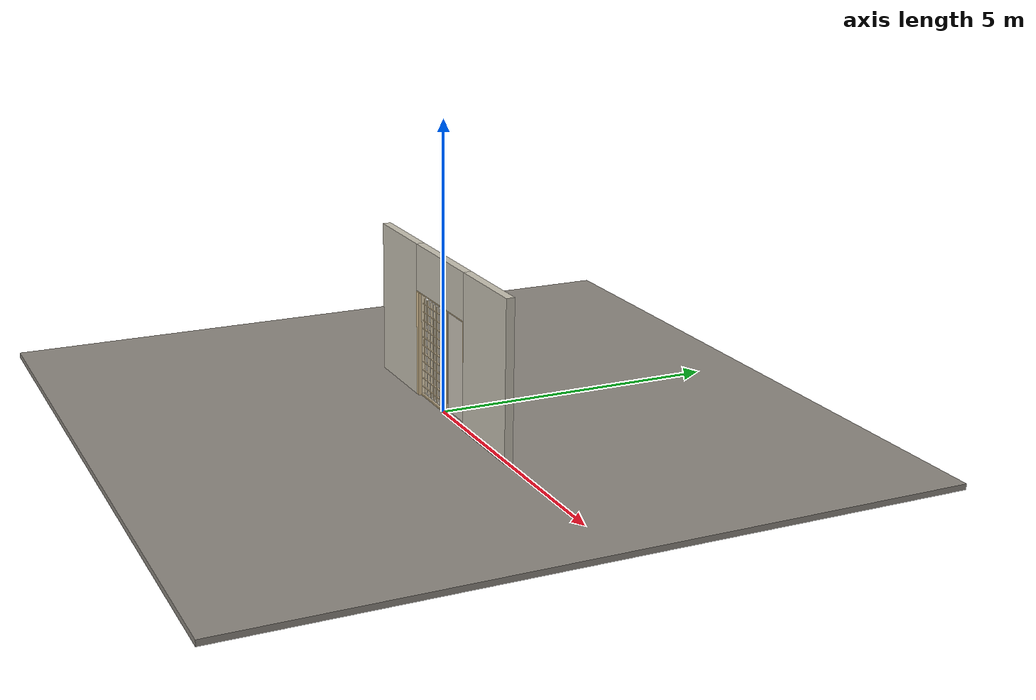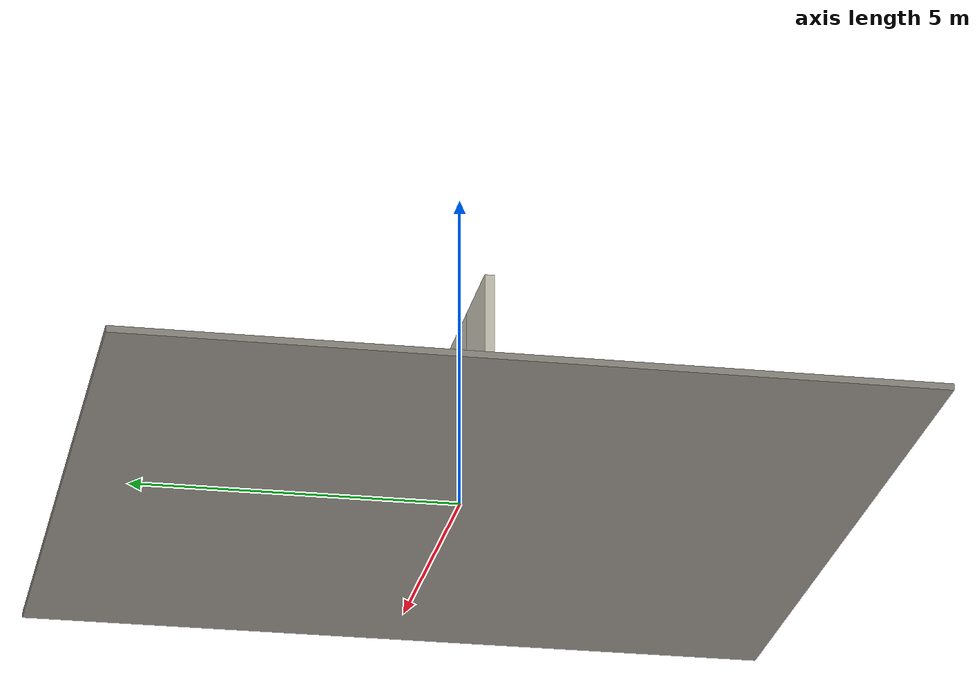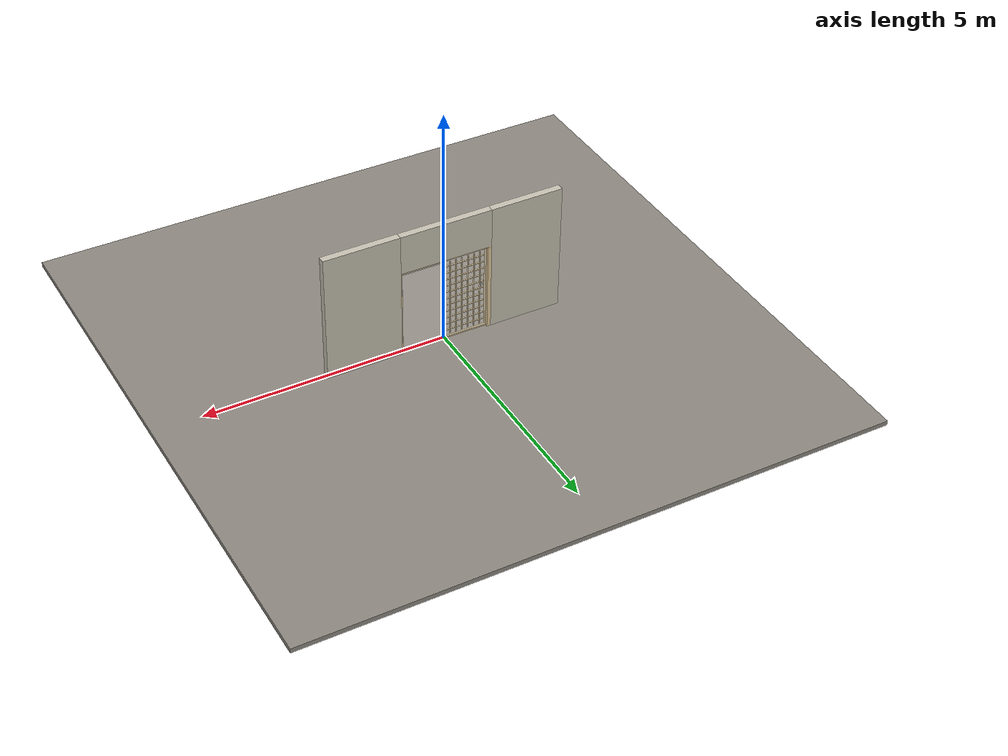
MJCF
<?xml version="1.0" ?>
<mujoco model="db0340_sliding_single_full">
  <compiler angle="radian" meshdir="../../hardware" texturedir="../../textures" autolimits="true" inertiafromgeom="false"/>
  <option timestep="0.002" integrator="implicitfast" cone="elliptic" impratio="10" noslip_iterations="3">
    <flag multiccd="enable"/>
  </option>
  <size memory="16M"/>
  <default>
    <geom condim="4" solref="0.005 1" solimp="0.95 0.99 0.001"/>
    <joint solreflimit="0.005 1" solimplimit="0.95 0.99 0.001"/>
    <tendon solreflimit="0.005 1"/>
    <equality solref="0.002 1"/>
  </default>
  <visual>
    <headlight ambient="0.4 0.4 0.4" diffuse="0.7 0.7 0.7" specular="0.2 0.2 0.2"/>
    <quality shadowsize="4096"/>
    <map znear="0.01" zfar="60"/>
  </visual>
  <asset>
    <material name="mat_floor" rgba="0.55 0.53 0.5 1" specular="0.2" shininess="0.15" reflectance="0"/>
    <material name="mat_wall" rgba="0.78 0.76 0.7 1" specular="0.2" shininess="0.1" reflectance="0"/>
    <material name="mat_frame" rgba="0.88 0.78 0.6 1" specular="0.2" shininess="0.4" reflectance="0"/>
    <material name="mat_track" rgba="0.8 0.81 0.83 1" specular="0.8" shininess="0.6" reflectance="0.4"/>
    <material name="mat_fixed_glass" rgba="0.85 0.92 0.95 0.25" specular="0.2" shininess="0.95" reflectance="0.1"/>
    <material name="mat_fixed_shoji" rgba="0.98 0.96 0.9 0.45" specular="0.2" shininess="0.1" reflectance="0.1"/>
    <material name="mat_shikii" rgba="0.88 0.78 0.6 1" specular="0.2" shininess="0.4" reflectance="0"/>
    <material name="mat_leaf" rgba="0.98 0.96 0.9 0.45" specular="0.2" shininess="0.1" reflectance="0.1"/>
    <material name="mat_kumiko" rgba="0.88 0.78 0.6 1" specular="0.2" shininess="0.4" reflectance="0"/>
    <material name="mat_roller" rgba="0.65 0.66 0.68 1" specular="0.74" shininess="0.5" reflectance="0.36"/>
    <material name="mat_op_hinoki" rgba="0.88 0.78 0.6 1" specular="0.2" shininess="0.4" reflectance="0"/>
    <material name="mat_op_nickel_satin" rgba="0.72 0.7 0.66 1" specular="0.8" shininess="0.65" reflectance="0.4"/>
    <material name="mat_hook" rgba="0.75 0.76 0.77 1" specular="0.8" shininess="0.65" reflectance="0.4"/>
    <texture name="skybox" type="skybox" builtin="gradient" rgb1="0.6 0.7 0.85" rgb2="0.9 0.92 0.95" width="256" height="256"/>
  </asset>
  <worldbody>
    <light name="sun" pos="1.5 -2.5 4" dir="-0.3 0.5 -0.8" directional="true" diffuse="0.8 0.8 0.8" specular="0.3 0.3 0.3" castshadow="true"/>
    <light name="fill" pos="-1.5 2.5 3" dir="0.3 -0.5 -0.7" directional="true" diffuse="0.35 0.35 0.4" castshadow="false"/>
    <camera name="robot_view" pos="0 -2.36875 1.59325" xyaxes="1 0 0 0 0.26963 0.962964" fovy="52"/>
    <camera name="far_view" pos="0 2.36875 1.59325" xyaxes="-1 0 0 0 -0.26963 0.962964" fovy="52"/>
    <camera name="iso" pos="1.80025 -1.98975 1.97225" xyaxes="0.741536 0.670913 0 -0.242917 0.268487 0.932151" fovy="46"/>
    <camera name="detail_handle" pos="-0.635 -0.815 1.28" xyaxes="0.97561 0.219512 0 -0.070934 0.315262 0.94635" fovy="38"/>
    <geom name="floor" type="box" size="6 6 0.05" pos="0 0 -0.05" material="mat_floor" group="0" contype="1" conaffinity="1" friction="0.8 0.005 0.0001" density="2400"/>
    <geom name="wall_left" type="box" size="0.7555 0.0725 1.35" pos="-1.7445 0 1.35" material="mat_wall" group="0" contype="1" conaffinity="1" friction="0.6 0.005 0.0001" density="800"/>
    <geom name="wall_right" type="box" size="0.7855 0.0725 1.35" pos="1.7145 0 1.35" material="mat_wall" group="0" contype="1" conaffinity="1" friction="0.6 0.005 0.0001" density="800"/>
    <geom name="wall_header" type="box" size="0.959 0.0725 0.4105" pos="-0.03 0 2.2895" material="mat_wall" group="0" contype="1" conaffinity="1" friction="0.6 0.005 0.0001" density="800"/>
    <geom name="jamb_r" type="box" size="0.0095 0.0725 0.93" pos="0.9195 0 0.93" material="mat_frame" group="0" contype="1" conaffinity="1" friction="0.6 0.005 0.0001" density="300"/>
    <geom name="jamb_head" type="box" size="0.929 0.0725 0.0095" pos="0 0 1.8695" material="mat_frame" group="0" contype="1" conaffinity="1" friction="0.6 0.005 0.0001" density="300"/>
    <geom name="fixed_panel_glass" type="box" size="0.435 0.003 0.88" pos="0.455 0.04 0.93" material="mat_fixed_shoji" group="0" contype="1" conaffinity="1" friction="0.6 0.005 0.0001" density="2500"/>
    <geom name="fixed_panel_stile" type="box" size="0.03 0.012 0.93" pos="0.03 0.04 0.93" material="mat_frame" group="0" contype="1" conaffinity="1" friction="0.6 0.005 0.0001" density="1400"/>
    <geom name="shikii" type="box" size="0.95 0.025 0.012" pos="-0.005 0 0.012" material="mat_shikii" group="0" contype="1" conaffinity="1" friction="0.6 0.005 0.0001" density="2700"/>
    <geom name="kamoi" type="box" size="0.95 0.025 0.03" pos="-0.005 0 1.89" material="mat_shikii" group="0" contype="1" conaffinity="1" friction="0.6 0.005 0.0001" density="410"/>
    <geom name="jamb_latch_0" type="box" size="0.0395 0.0725 0.93" pos="-0.9495 0 0.93" material="mat_frame" group="0" contype="1" conaffinity="1" friction="0.6 0.005 0.0001" density="300"/>
    <site name="approach_point" pos="0 -1.5 0" quat="1 0 0 0" size="0.05" rgba="0.2 0.9 0.2 0.5" group="4"/>
    <site name="goal_point" pos="0 1.5 0" quat="1 0 0 0" size="0.05" rgba="0.2 0.9 0.2 0.5" group="4"/>
    <site name="door_plane_center" pos="0 0 0.93" quat="1 0 0 0" size="0.02" rgba="0.2 0.9 0.2 0.5" group="4"/>
    <body name="leaf" pos="-0.455 0 0">
      <inertial pos="-0.000342 0.000005 0.927069" mass="8.01336" quat="0.500024 0.500037 0.499962 -0.499976" diaginertia="0.54185127 2.161905695 2.702552101"/>
      <joint name="leaf_slide" type="slide" axis="1 0 0" limited="true" range="0 0.9" damping="2.400668" frictionloss="3.929211" armature="0.5"/>
      <geom name="leaf_slab" type="box" size="0.45 0.015 0.9" pos="0 0 0.927" material="mat_leaf" group="0" contype="1" conaffinity="1" friction="0.3 0.005 0.0001" density="1"/>
      <geom name="leaf_kumiko_v1" type="box" size="0.006 0.017 0.85" pos="-0.321429 0 0.927" material="mat_kumiko" group="1" contype="0" conaffinity="0" density="1"/>
      <geom name="leaf_kumiko_v2" type="box" size="0.006 0.017 0.85" pos="-0.192857 0 0.927" material="mat_kumiko" group="1" contype="0" conaffinity="0" density="1"/>
      <geom name="leaf_kumiko_v3" type="box" size="0.006 0.017 0.85" pos="-0.064286 0 0.927" material="mat_kumiko" group="1" contype="0" conaffinity="0" density="1"/>
      <geom name="leaf_kumiko_v4" type="box" size="0.006 0.017 0.85" pos="0.064286 0 0.927" material="mat_kumiko" group="1" contype="0" conaffinity="0" density="1"/>
      <geom name="leaf_kumiko_v5" type="box" size="0.006 0.017 0.85" pos="0.192857 0 0.927" material="mat_kumiko" group="1" contype="0" conaffinity="0" density="1"/>
      <geom name="leaf_kumiko_v6" type="box" size="0.006 0.017 0.85" pos="0.321429 0 0.927" material="mat_kumiko" group="1" contype="0" conaffinity="0" density="1"/>
      <geom name="leaf_kumiko_h1" type="box" size="0.41 0.017 0.006" pos="0 0 0.177" material="mat_kumiko" group="1" contype="0" conaffinity="0" density="1"/>
      <geom name="leaf_kumiko_h2" type="box" size="0.41 0.017 0.006" pos="0 0 0.327" material="mat_kumiko" group="1" contype="0" conaffinity="0" density="1"/>
      <geom name="leaf_kumiko_h3" type="box" size="0.41 0.017 0.006" pos="0 0 0.477" material="mat_kumiko" group="1" contype="0" conaffinity="0" density="1"/>
      <geom name="leaf_kumiko_h4" type="box" size="0.41 0.017 0.006" pos="0 0 0.627" material="mat_kumiko" group="1" contype="0" conaffinity="0" density="1"/>
      <geom name="leaf_kumiko_h5" type="box" size="0.41 0.017 0.006" pos="0 0 0.777" material="mat_kumiko" group="1" contype="0" conaffinity="0" density="1"/>
      <geom name="leaf_kumiko_h6" type="box" size="0.41 0.017 0.006" pos="0 0 0.927" material="mat_kumiko" group="1" contype="0" conaffinity="0" density="1"/>
      <geom name="leaf_kumiko_h7" type="box" size="0.41 0.017 0.006" pos="0 0 1.077" material="mat_kumiko" group="1" contype="0" conaffinity="0" density="1"/>
      <geom name="leaf_kumiko_h8" type="box" size="0.41 0.017 0.006" pos="0 0 1.227" material="mat_kumiko" group="1" contype="0" conaffinity="0" density="1"/>
      <geom name="leaf_kumiko_h9" type="box" size="0.41 0.017 0.006" pos="0 0 1.377" material="mat_kumiko" group="1" contype="0" conaffinity="0" density="1"/>
      <geom name="leaf_kumiko_h10" type="box" size="0.41 0.017 0.006" pos="0 0 1.527" material="mat_kumiko" group="1" contype="0" conaffinity="0" density="1"/>
      <geom name="leaf_kumiko_h11" type="box" size="0.41 0.017 0.006" pos="0 0 1.677" material="mat_kumiko" group="1" contype="0" conaffinity="0" density="1"/>
      <geom name="leaf_pull_n" type="box" size="0.015 0.0005 0.04" pos="-0.36 -0.0155 1" material="mat_op_hinoki" group="1" contype="0" conaffinity="0" density="1000"/>
      <geom name="leaf_ext_pull_p" type="box" size="0.025 0.0005 0.05" pos="-0.36 0.0155 1" material="mat_op_nickel_satin" group="1" contype="0" conaffinity="0" density="1000"/>
      <site name="leaf_pull_grip_n" pos="-0.36 -0.015 1" quat="1 0 0 0" size="0.012" rgba="0.2 0.9 0.2 0.5" group="4"/>
      <site name="leaf_ext_pull_grip_p" pos="-0.36 0.015 1" quat="1 0 0 0" size="0.012" rgba="0.2 0.9 0.2 0.5" group="4"/>
      <site name="leaf_edge_mid" pos="-0.45 0 0.927" quat="1 0 0 0" size="0.02" rgba="0.2 0.9 0.2 0.5" group="4"/>
    </body>
  </worldbody>
  <sensor>
    <jointpos name="leaf_slide_pos" joint="leaf_slide"/>
    <jointvel name="leaf_slide_vel" joint="leaf_slide"/>
  </sensor>
</mujoco>
